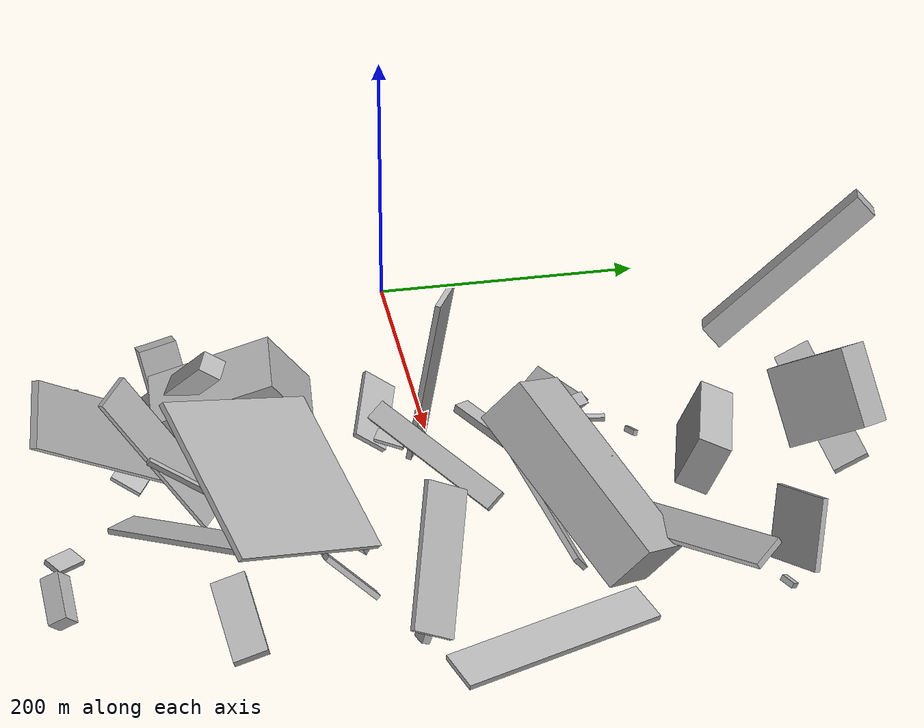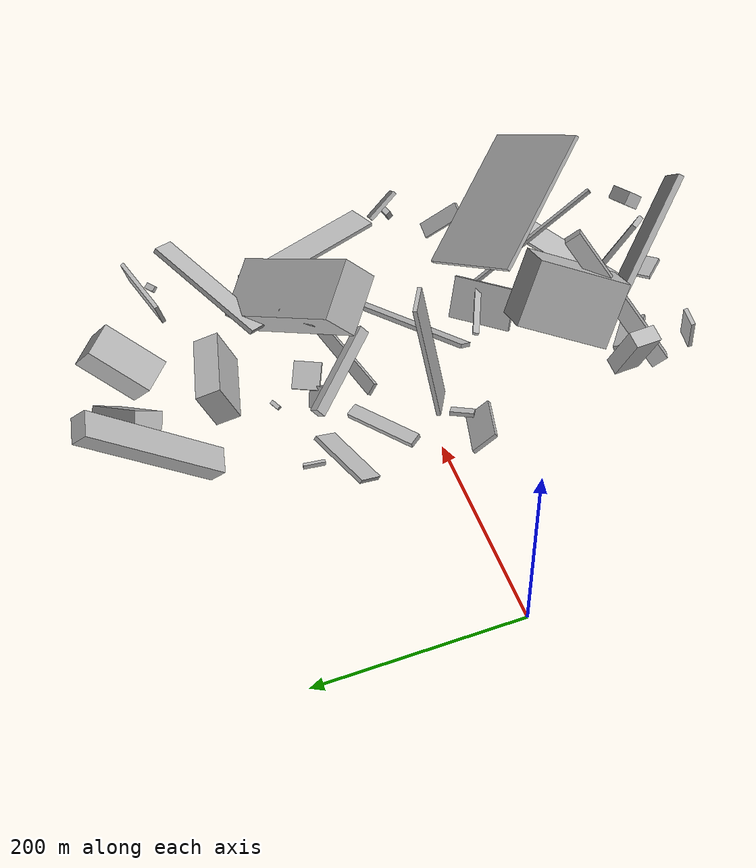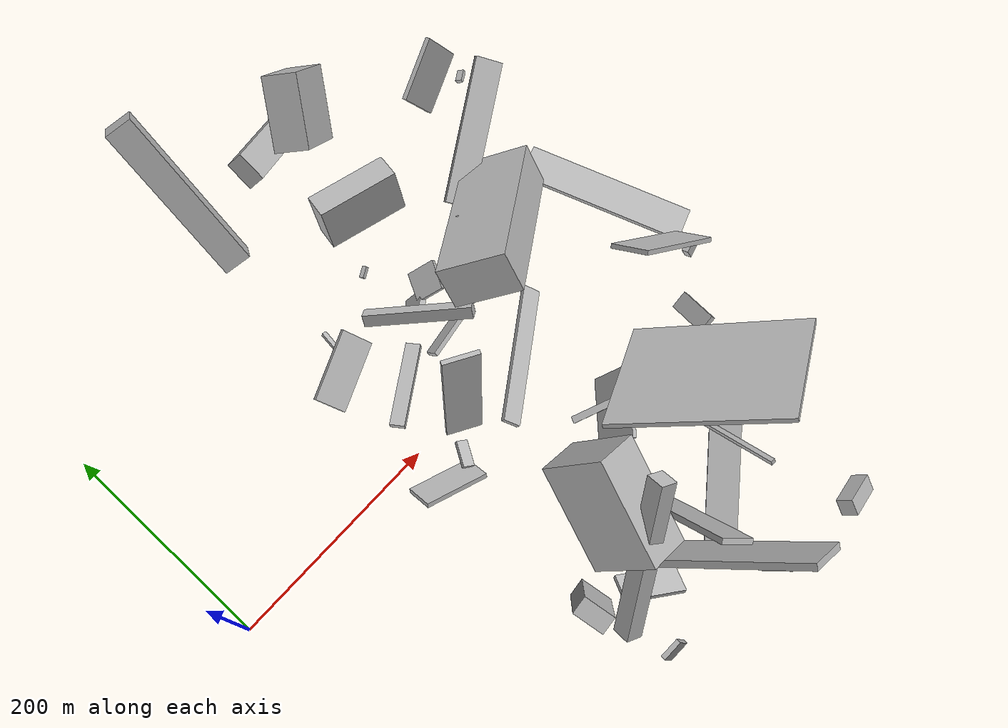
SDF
<sdf version="1.6">
 <world name="default">
  <model name="building_1">
   <static>0</static>
   <pose>297.71241578657066 87.83593629910652 17.47330709386474 2.6968535912542233 0.5865769096136061 -1.1177263193110707</pose>
   <link name="link">
    <gravity>0</gravity>
    <pose>0 0 11.0 0 0 0</pose>
    <collision name="collision"><geometry><box><size>6 19 22</size></box></geometry></collision>
    <visual name="visual">
     <cast_shadows>0</cast_shadows>
     <geometry><box><size>6 19 22</size></box></geometry>
     <material>
      <script>
       <uri>model://HANNAS_wall/materials/scripts</uri>
       <uri>model://HANNAS_wall/materials/textures</uri>
       <name>vrc/HANNAS_wall</name>
      </script>
     </material>
    </visual>
   </link>
  </model>
  <model name="building_2">
   <static>0</static>
   <pose>206.96011081811935 212.61075563548965 63.79814033238791 0.8096348505853139 0.25082228805432816 2.900996197542213</pose>
   <link name="link">
    <gravity>0</gravity>
    <pose>0 0 75.0 0 0 0</pose>
    <collision name="collision"><geometry><box><size>24 19 150</size></box></geometry></collision>
    <visual name="visual">
     <cast_shadows>0</cast_shadows>
     <geometry><box><size>24 19 150</size></box></geometry>
     <material>
      <script>
       <uri>model://HANNAS_wall/materials/scripts</uri>
       <uri>model://HANNAS_wall/materials/textures</uri>
       <name>vrc/HANNAS_wall</name>
      </script>
     </material>
    </visual>
   </link>
  </model>
  <model name="building_3">
   <static>0</static>
   <pose>307.0702612947243 -77.11629436613842 16.124817078696434 1.2682096785554164 -0.12013077441322298 1.1812003932377553</pose>
   <link name="link">
    <gravity>0</gravity>
    <pose>0 0 25.0 0 0 0</pose>
    <collision name="collision"><geometry><box><size>6 5 50</size></box></geometry></collision>
    <visual name="visual">
     <cast_shadows>0</cast_shadows>
     <geometry><box><size>6 5 50</size></box></geometry>
     <material>
      <script>
       <uri>model://HANNAS_wall/materials/scripts</uri>
       <uri>model://HANNAS_wall/materials/textures</uri>
       <name>vrc/HANNAS_wall</name>
      </script>
     </material>
    </visual>
   </link>
  </model>
  <model name="building_4">
   <static>0</static>
   <pose>313.78167105293386 -246.09990918476598 71.08225700155167 0.4948101192086795 -0.6307183531772063 -0.9255171540671405</pose>
   <link name="link">
    <gravity>0</gravity>
    <pose>0 0 23.5 0 0 0</pose>
    <collision name="collision"><geometry><box><size>150 6 47</size></box></geometry></collision>
    <visual name="visual">
     <cast_shadows>0</cast_shadows>
     <geometry><box><size>150 6 47</size></box></geometry>
     <material>
      <script>
       <uri>model://HANNAS_wall/materials/scripts</uri>
       <uri>model://HANNAS_wall/materials/textures</uri>
       <name>vrc/HANNAS_wall</name>
      </script>
     </material>
    </visual>
   </link>
  </model>
  <model name="building_6">
   <static>0</static>
   <pose>247.51975503204395 -6.285872282242987 80.4801147642246 -2.9505563134156616 -1.3897228845897212 0.8711952157885157</pose>
   <link name="link">
    <gravity>0</gravity>
    <pose>0 0 2.0 0 0 0</pose>
    <collision name="collision"><geometry><box><size>139 31 4</size></box></geometry></collision>
    <visual name="visual">
     <cast_shadows>0</cast_shadows>
     <geometry><box><size>139 31 4</size></box></geometry>
     <material>
      <script>
       <uri>model://HANNAS_wall/materials/scripts</uri>
       <uri>model://HANNAS_wall/materials/textures</uri>
       <name>vrc/HANNAS_wall</name>
      </script>
     </material>
    </visual>
   </link>
  </model>
  <model name="building_10">
   <static>0</static>
   <pose>267.6451398783628 -228.05808606958726 21.100522226349664 1.2604779262818613 -0.4113133495196235 -2.0708005804675986</pose>
   <link name="link">
    <gravity>0</gravity>
    <pose>0 0 27.0 0 0 0</pose>
    <collision name="collision"><geometry><box><size>24 4 54</size></box></geometry></collision>
    <visual name="visual">
     <cast_shadows>0</cast_shadows>
     <geometry><box><size>24 4 54</size></box></geometry>
     <material>
      <script>
       <uri>model://HANNAS_wall/materials/scripts</uri>
       <uri>model://HANNAS_wall/materials/textures</uri>
       <name>vrc/HANNAS_wall</name>
      </script>
     </material>
    </visual>
   </link>
  </model>
  <model name="building_11">
   <static>0</static>
   <pose>361.46367450054584 22.07012182666691 40.913725267564274 1.2820316862641012 -0.9685445225770268 -0.734197492434025</pose>
   <link name="link">
    <gravity>0</gravity>
    <pose>0 0 61.5 0 0 0</pose>
    <collision name="collision"><geometry><box><size>4 16 123</size></box></geometry></collision>
    <visual name="visual">
     <cast_shadows>0</cast_shadows>
     <geometry><box><size>4 16 123</size></box></geometry>
     <material>
      <script>
       <uri>model://HANNAS_wall/materials/scripts</uri>
       <uri>model://HANNAS_wall/materials/textures</uri>
       <name>vrc/HANNAS_wall</name>
      </script>
     </material>
    </visual>
   </link>
  </model>
  <model name="building_13">
   <static>0</static>
   <pose>351.07151464055613 172.58237601797344 45.339455173485355 1.536291086535136 -0.3989734044542775 -1.8108674096821664</pose>
   <link name="link">
    <gravity>0</gravity>
    <pose>0 0 36.0 0 0 0</pose>
    <collision name="collision"><geometry><box><size>25 42 72</size></box></geometry></collision>
    <visual name="visual">
     <cast_shadows>0</cast_shadows>
     <geometry><box><size>25 42 72</size></box></geometry>
     <material>
      <script>
       <uri>model://HANNAS_wall/materials/scripts</uri>
       <uri>model://HANNAS_wall/materials/textures</uri>
       <name>vrc/HANNAS_wall</name>
      </script>
     </material>
    </visual>
   </link>
  </model>
  <model name="building_16">
   <static>0</static>
   <pose>317.0956797515676 243.31815341003679 67.44147268780708 0.5051360739746567 -0.9327896931776685 -2.8259517691248037</pose>
   <link name="link">
    <gravity>0</gravity>
    <pose>0 0 32.0 0 0 0</pose>
    <collision name="collision"><geometry><box><size>58 31 64</size></box></geometry></collision>
    <visual name="visual">
     <cast_shadows>0</cast_shadows>
     <geometry><box><size>58 31 64</size></box></geometry>
     <material>
      <script>
       <uri>model://HANNAS_wall/materials/scripts</uri>
       <uri>model://HANNAS_wall/materials/textures</uri>
       <name>vrc/HANNAS_wall</name>
      </script>
     </material>
    </visual>
   </link>
  </model>
  <model name="building_18">
   <static>0</static>
   <pose>251.75212741427526 -133.82682418713418 56.51250707187681 0.48213585596451985 0.4732582080417911 -0.062205337591230876</pose>
   <link name="link">
    <gravity>0</gravity>
    <pose>0 0 33.0 0 0 0</pose>
    <collision name="collision"><geometry><box><size>40 95 66</size></box></geometry></collision>
    <visual name="visual">
     <cast_shadows>0</cast_shadows>
     <geometry><box><size>40 95 66</size></box></geometry>
     <material>
      <script>
       <uri>model://HANNAS_wall/materials/scripts</uri>
       <uri>model://HANNAS_wall/materials/textures</uri>
       <name>vrc/HANNAS_wall</name>
      </script>
     </material>
    </visual>
   </link>
  </model>
  <model name="building_20">
   <static>0</static>
   <pose>204.84514208319138 -184.7313578506796 39.52454673769282 0.16518541407627468 -0.31147829664308463 0.11244150372047418</pose>
   <link name="link">
    <gravity>0</gravity>
    <pose>0 0 26.5 0 0 0</pose>
    <collision name="collision"><geometry><box><size>16 28 53</size></box></geometry></collision>
    <visual name="visual">
     <cast_shadows>0</cast_shadows>
     <geometry><box><size>16 28 53</size></box></geometry>
     <material>
      <script>
       <uri>model://HANNAS_wall/materials/scripts</uri>
       <uri>model://HANNAS_wall/materials/textures</uri>
       <name>vrc/HANNAS_wall</name>
      </script>
     </material>
    </visual>
   </link>
  </model>
  <model name="building_21">
   <static>0</static>
   <pose>298.01805813345976 260.80923537097306 44.08512058038002 0.9776356016978127 -0.6616502008537043 -2.7298170985158863</pose>
   <link name="link">
    <gravity>0</gravity>
    <pose>0 0 13.5 0 0 0</pose>
    <collision name="collision"><geometry><box><size>93 17 27</size></box></geometry></collision>
    <visual name="visual">
     <cast_shadows>0</cast_shadows>
     <geometry><box><size>93 17 27</size></box></geometry>
     <material>
      <script>
       <uri>model://HANNAS_wall/materials/scripts</uri>
       <uri>model://HANNAS_wall/materials/textures</uri>
       <name>vrc/HANNAS_wall</name>
      </script>
     </material>
    </visual>
   </link>
  </model>
  <model name="building_22">
   <static>0</static>
   <pose>397.1714974391713 62.912784899826704 74.18462252494449 2.097577245200594 -0.5450222949340181 -2.5667175552980606</pose>
   <link name="link">
    <gravity>0</gravity>
    <pose>0 0 30.5 0 0 0</pose>
    <collision name="collision"><geometry><box><size>150 39 61</size></box></geometry></collision>
    <visual name="visual">
     <cast_shadows>0</cast_shadows>
     <geometry><box><size>150 39 61</size></box></geometry>
     <material>
      <script>
       <uri>model://HANNAS_wall/materials/scripts</uri>
       <uri>model://HANNAS_wall/materials/textures</uri>
       <name>vrc/HANNAS_wall</name>
      </script>
     </material>
    </visual>
   </link>
  </model>
  <model name="building_28">
   <static>0</static>
   <pose>410.92057568345444 -283.24886837420456 28.313043069506655 -0.6669407198926535 -0.5112680128658409 -3.070676963409602</pose>
   <link name="link">
    <gravity>0</gravity>
    <pose>0 0 7.0 0 0 0</pose>
    <collision name="collision"><geometry><box><size>35 15 14</size></box></geometry></collision>
    <visual name="visual">
     <cast_shadows>0</cast_shadows>
     <geometry><box><size>35 15 14</size></box></geometry>
     <material>
      <script>
       <uri>model://HANNAS_wall/materials/scripts</uri>
       <uri>model://HANNAS_wall/materials/textures</uri>
       <name>vrc/HANNAS_wall</name>
      </script>
     </material>
    </visual>
   </link>
  </model>
  <model name="building_30">
   <static>0</static>
   <pose>281.48337224547487 75.07925805366995 51.39193117331456 0.8837952105883309 -0.2631095018806541 -0.8163827819466523</pose>
   <link name="link">
    <gravity>0</gravity>
    <pose>0 0 5.0 0 0 0</pose>
    <collision name="collision"><geometry><box><size>94 11 10</size></box></geometry></collision>
    <visual name="visual">
     <cast_shadows>0</cast_shadows>
     <geometry><box><size>94 11 10</size></box></geometry>
     <material>
      <script>
       <uri>model://HANNAS_wall/materials/scripts</uri>
       <uri>model://HANNAS_wall/materials/textures</uri>
       <name>vrc/HANNAS_wall</name>
      </script>
     </material>
    </visual>
   </link>
  </model>
  <model name="building_31">
   <static>0</static>
   <pose>443.06495664427644 215.62962405526093 50.56171488506024 2.291932640045188 -1.1166171068039117 2.7242985962220456</pose>
   <link name="link">
    <gravity>0</gravity>
    <pose>0 0 2.0 0 0 0</pose>
    <collision name="collision"><geometry><box><size>51 56 4</size></box></geometry></collision>
    <visual name="visual">
     <cast_shadows>0</cast_shadows>
     <geometry><box><size>51 56 4</size></box></geometry>
     <material>
      <script>
       <uri>model://HANNAS_wall/materials/scripts</uri>
       <uri>model://HANNAS_wall/materials/textures</uri>
       <name>vrc/HANNAS_wall</name>
      </script>
     </material>
    </visual>
   </link>
  </model>
  <model name="building_34">
   <static>0</static>
   <pose>347.46894992241516 -84.92059379199341 69.63384082575583 0.9189776206397643 -0.8192777258078858 1.1968600701810714</pose>
   <link name="link">
    <gravity>0</gravity>
    <pose>0 0 75.0 0 0 0</pose>
    <collision name="collision"><geometry><box><size>4 122 150</size></box></geometry></collision>
    <visual name="visual">
     <cast_shadows>0</cast_shadows>
     <geometry><box><size>4 122 150</size></box></geometry>
     <material>
      <script>
       <uri>model://HANNAS_wall/materials/scripts</uri>
       <uri>model://HANNAS_wall/materials/textures</uri>
       <name>vrc/HANNAS_wall</name>
      </script>
     </material>
    </visual>
   </link>
  </model>
  <model name="building_35">
   <static>0</static>
   <pose>204.8514459845171 93.74980672519081 18.075513329621458 -0.12936541500774848 -0.6239656090000977 2.0385656436505917</pose>
   <link name="link">
    <gravity>0</gravity>
    <pose>0 0 2.0 0 0 0</pose>
    <collision name="collision"><geometry><box><size>30 63 4</size></box></geometry></collision>
    <visual name="visual">
     <cast_shadows>0</cast_shadows>
     <geometry><box><size>30 63 4</size></box></geometry>
     <material>
      <script>
       <uri>model://HANNAS_wall/materials/scripts</uri>
       <uri>model://HANNAS_wall/materials/textures</uri>
       <name>vrc/HANNAS_wall</name>
      </script>
     </material>
    </visual>
   </link>
  </model>
  <model name="building_36">
   <static>0</static>
   <pose>378.4596483250299 122.05644675926067 27.88734179069738 0.9789207001568955 1.0742460602247041 1.5730494803375332</pose>
   <link name="link">
    <gravity>0</gravity>
    <pose>0 0 64.5 0 0 0</pose>
    <collision name="collision"><geometry><box><size>5 25 129</size></box></geometry></collision>
    <visual name="visual">
     <cast_shadows>0</cast_shadows>
     <geometry><box><size>5 25 129</size></box></geometry>
     <material>
      <script>
       <uri>model://HANNAS_wall/materials/scripts</uri>
       <uri>model://HANNAS_wall/materials/textures</uri>
       <name>vrc/HANNAS_wall</name>
      </script>
     </material>
    </visual>
   </link>
  </model>
  <model name="building_38">
   <static>0</static>
   <pose>209.70912548932057 -259.1334391043889 43.89996663707501 0.6369880946280805 -1.2984624363727835 2.4835404906309675</pose>
   <link name="link">
    <gravity>0</gravity>
    <pose>0 0 9.0 0 0 0</pose>
    <collision name="collision"><geometry><box><size>47 4 18</size></box></geometry></collision>
    <visual name="visual">
     <cast_shadows>0</cast_shadows>
     <geometry><box><size>47 4 18</size></box></geometry>
     <material>
      <script>
       <uri>model://HANNAS_wall/materials/scripts</uri>
       <uri>model://HANNAS_wall/materials/textures</uri>
       <name>vrc/HANNAS_wall</name>
      </script>
     </material>
    </visual>
   </link>
  </model>
  <model name="building_40">
   <static>0</static>
   <pose>337.4850164448382 62.63080665086672 18.289659731971188 0.11376829304376398 -0.628134828828318 1.6826366860598554</pose>
   <link name="link">
    <gravity>0</gravity>
    <pose>0 0 6.5 0 0 0</pose>
    <collision name="collision"><geometry><box><size>4 150 13</size></box></geometry></collision>
    <visual name="visual">
     <cast_shadows>0</cast_shadows>
     <geometry><box><size>4 150 13</size></box></geometry>
     <material>
      <script>
       <uri>model://HANNAS_wall/materials/scripts</uri>
       <uri>model://HANNAS_wall/materials/textures</uri>
       <name>vrc/HANNAS_wall</name>
      </script>
     </material>
    </visual>
   </link>
  </model>
  <model name="building_41">
   <static>0</static>
   <pose>455.7790174752265 110.10494715297648 9.958671258566918 1.6991675431652704 -1.4132178837291658 0.21780299085193638</pose>
   <link name="link">
    <gravity>0</gravity>
    <pose>0 0 75.0 0 0 0</pose>
    <collision name="collision"><geometry><box><size>4 32 150</size></box></geometry></collision>
    <visual name="visual">
     <cast_shadows>0</cast_shadows>
     <geometry><box><size>4 32 150</size></box></geometry>
     <material>
      <script>
       <uri>model://HANNAS_wall/materials/scripts</uri>
       <uri>model://HANNAS_wall/materials/textures</uri>
       <name>vrc/HANNAS_wall</name>
      </script>
     </material>
    </visual>
   </link>
  </model>
  <model name="building_42">
   <static>0</static>
   <pose>437.1848148771667 -180.077713038702 15.714639798899604 1.2618338462241274 -0.24822062700309455 -3.044958527183645</pose>
   <link name="link">
    <gravity>0</gravity>
    <pose>0 0 12.5 0 0 0</pose>
    <collision name="collision"><geometry><box><size>71 5 25</size></box></geometry></collision>
    <visual name="visual">
     <cast_shadows>0</cast_shadows>
     <geometry><box><size>71 5 25</size></box></geometry>
     <material>
      <script>
       <uri>model://HANNAS_wall/materials/scripts</uri>
       <uri>model://HANNAS_wall/materials/textures</uri>
       <name>vrc/HANNAS_wall</name>
      </script>
     </material>
    </visual>
   </link>
  </model>
  <model name="building_44">
   <static>0</static>
   <pose>316.75432891875676 107.70820693661192 20.77195737746744 1.5079600944694262 -0.5794777495831444 -0.46285554862212036</pose>
   <link name="link">
    <gravity>0</gravity>
    <pose>0 0 13.5 0 0 0</pose>
    <collision name="collision"><geometry><box><size>27 4 27</size></box></geometry></collision>
    <visual name="visual">
     <cast_shadows>0</cast_shadows>
     <geometry><box><size>27 4 27</size></box></geometry>
     <material>
      <script>
       <uri>model://HANNAS_wall/materials/scripts</uri>
       <uri>model://HANNAS_wall/materials/textures</uri>
       <name>vrc/HANNAS_wall</name>
      </script>
     </material>
    </visual>
   </link>
  </model>
  <model name="building_45">
   <static>0</static>
   <pose>233.23807016238325 47.23718192580433 16.801124412572396 -2.987117303333822 -0.12657207334539103 -2.5590559405482094</pose>
   <link name="link">
    <gravity>0</gravity>
    <pose>0 0 3.0 0 0 0</pose>
    <collision name="collision"><geometry><box><size>75 13 6</size></box></geometry></collision>
    <visual name="visual">
     <cast_shadows>0</cast_shadows>
     <geometry><box><size>75 13 6</size></box></geometry>
     <material>
      <script>
       <uri>model://HANNAS_wall/materials/scripts</uri>
       <uri>model://HANNAS_wall/materials/textures</uri>
       <name>vrc/HANNAS_wall</name>
      </script>
     </material>
    </visual>
   </link>
  </model>
  <model name="building_46">
   <static>0</static>
   <pose>292.48107210706627 -194.04614856961754 73.9978071296627 1.9906625507238773 -0.3940410696121574 0.6388211681908269</pose>
   <link name="link">
    <gravity>0</gravity>
    <pose>0 0 13.5 0 0 0</pose>
    <collision name="collision"><geometry><box><size>5 126 27</size></box></geometry></collision>
    <visual name="visual">
     <cast_shadows>0</cast_shadows>
     <geometry><box><size>5 126 27</size></box></geometry>
     <material>
      <script>
       <uri>model://HANNAS_wall/materials/scripts</uri>
       <uri>model://HANNAS_wall/materials/textures</uri>
       <name>vrc/HANNAS_wall</name>
      </script>
     </material>
    </visual>
   </link>
  </model>
  <model name="building_48">
   <static>0</static>
   <pose>367.82642101030217 -159.6219496306828 60.816050408735165 0.6495001780424523 -0.12974064709208513 3.034731647817542</pose>
   <link name="link">
    <gravity>0</gravity>
    <pose>0 0 2.0 0 0 0</pose>
    <collision name="collision"><geometry><box><size>4 150 4</size></box></geometry></collision>
    <visual name="visual">
     <cast_shadows>0</cast_shadows>
     <geometry><box><size>4 150 4</size></box></geometry>
     <material>
      <script>
       <uri>model://HANNAS_wall/materials/scripts</uri>
       <uri>model://HANNAS_wall/materials/textures</uri>
       <name>vrc/HANNAS_wall</name>
      </script>
     </material>
    </visual>
   </link>
  </model>
  <model name="building_49">
   <static>0</static>
   <pose>354.3653620931119 72.88266100502348 40.22492990543145 0.6576361989779184 -0.1647904857248847 -2.442301127326727</pose>
   <link name="link">
    <gravity>0</gravity>
    <pose>0 0 19.0 0 0 0</pose>
    <collision name="collision"><geometry><box><size>40 7 38</size></box></geometry></collision>
    <visual name="visual">
     <cast_shadows>0</cast_shadows>
     <geometry><box><size>40 7 38</size></box></geometry>
     <material>
      <script>
       <uri>model://HANNAS_wall/materials/scripts</uri>
       <uri>model://HANNAS_wall/materials/textures</uri>
       <name>vrc/HANNAS_wall</name>
      </script>
     </material>
    </visual>
   </link>
  </model>
  <model name="building_54">
   <static>0</static>
   <pose>365.1657943058678 -188.3715495379811 37.32633624432501 0.28735636491207467 -0.09717857845283673 -0.8896469553728923</pose>
   <link name="link">
    <gravity>0</gravity>
    <pose>0 0 2.0 0 0 0</pose>
    <collision name="collision"><geometry><box><size>26 150 4</size></box></geometry></collision>
    <visual name="visual">
     <cast_shadows>0</cast_shadows>
     <geometry><box><size>26 150 4</size></box></geometry>
     <material>
      <script>
       <uri>model://HANNAS_wall/materials/scripts</uri>
       <uri>model://HANNAS_wall/materials/textures</uri>
       <name>vrc/HANNAS_wall</name>
      </script>
     </material>
    </visual>
   </link>
  </model>
  <model name="building_57">
   <static>0</static>
   <pose>470.51695158764164 204.18328409679268 24.089261319831575 0.15130786791518522 0.4836527699571073 2.199484994818848</pose>
   <link name="link">
    <gravity>0</gravity>
    <pose>0 0 2.0 0 0 0</pose>
    <collision name="collision"><geometry><box><size>6 11 4</size></box></geometry></collision>
    <visual name="visual">
     <cast_shadows>0</cast_shadows>
     <geometry><box><size>6 11 4</size></box></geometry>
     <material>
      <script>
       <uri>model://HANNAS_wall/materials/scripts</uri>
       <uri>model://HANNAS_wall/materials/textures</uri>
       <name>vrc/HANNAS_wall</name>
      </script>
     </material>
    </visual>
   </link>
  </model>
  <model name="building_63">
   <static>0</static>
   <pose>443.5140812303823 -75.46744968065018 31.211650046216562 0.5457185943803182 0.7229494524485099 -1.1500163452277334</pose>
   <link name="link">
    <gravity>0</gravity>
    <pose>0 0 22.5 0 0 0</pose>
    <collision name="collision"><geometry><box><size>4 16 45</size></box></geometry></collision>
    <visual name="visual">
     <cast_shadows>0</cast_shadows>
     <geometry><box><size>4 16 45</size></box></geometry>
     <material>
      <script>
       <uri>model://HANNAS_wall/materials/scripts</uri>
       <uri>model://HANNAS_wall/materials/textures</uri>
       <name>vrc/HANNAS_wall</name>
      </script>
     </material>
    </visual>
   </link>
  </model>
  <model name="building_64">
   <static>0</static>
   <pose>217.35094715199642 120.71855349432546 5.350399276598997 -0.008774667763503831 -0.2548692999999739 3.0268407341735024</pose>
   <link name="link">
    <gravity>0</gravity>
    <pose>0 0 2.0 0 0 0</pose>
    <collision name="collision"><geometry><box><size>4 21 4</size></box></geometry></collision>
    <visual name="visual">
     <cast_shadows>0</cast_shadows>
     <geometry><box><size>4 21 4</size></box></geometry>
     <material>
      <script>
       <uri>model://HANNAS_wall/materials/scripts</uri>
       <uri>model://HANNAS_wall/materials/textures</uri>
       <name>vrc/HANNAS_wall</name>
      </script>
     </material>
    </visual>
   </link>
  </model>
  <model name="building_66">
   <static>0</static>
   <pose>336.6308061926148 -95.12548227522448 23.060954885069272 2.1840063151716214 0.12047311526053776 0.7780031265858908</pose>
   <link name="link">
    <gravity>0</gravity>
    <pose>0 0 2.0 0 0 0</pose>
    <collision name="collision"><geometry><box><size>64 42 4</size></box></geometry></collision>
    <visual name="visual">
     <cast_shadows>0</cast_shadows>
     <geometry><box><size>64 42 4</size></box></geometry>
     <material>
      <script>
       <uri>model://HANNAS_wall/materials/scripts</uri>
       <uri>model://HANNAS_wall/materials/textures</uri>
       <name>vrc/HANNAS_wall</name>
      </script>
     </material>
    </visual>
   </link>
  </model>
  <model name="building_67">
   <static>0</static>
   <pose>196.35673932677463 -48.237695346544356 25.89387228968713 2.259912320016476 -0.3298392052427857 2.8544649797227146</pose>
   <link name="link">
    <gravity>0</gravity>
    <pose>0 0 13.5 0 0 0</pose>
    <collision name="collision"><geometry><box><size>59 4 27</size></box></geometry></collision>
    <visual name="visual">
     <cast_shadows>0</cast_shadows>
     <geometry><box><size>59 4 27</size></box></geometry>
     <material>
      <script>
       <uri>model://HANNAS_wall/materials/scripts</uri>
       <uri>model://HANNAS_wall/materials/textures</uri>
       <name>vrc/HANNAS_wall</name>
      </script>
     </material>
    </visual>
   </link>
  </model>
  <model name="building_69">
   <static>0</static>
   <pose>454.63981509178325 -21.120167287455594 57.569974228009364 -0.7657885159070223 -0.758371760341857 2.8391740791572015</pose>
   <link name="link">
    <gravity>0</gravity>
    <pose>0 0 17.5 0 0 0</pose>
    <collision name="collision"><geometry><box><size>103 4 35</size></box></geometry></collision>
    <visual name="visual">
     <cast_shadows>0</cast_shadows>
     <geometry><box><size>103 4 35</size></box></geometry>
     <material>
      <script>
       <uri>model://HANNAS_wall/materials/scripts</uri>
       <uri>model://HANNAS_wall/materials/textures</uri>
       <name>vrc/HANNAS_wall</name>
      </script>
     </material>
    </visual>
   </link>
  </model>
  <model name="building_72">
   <static>0</static>
   <pose>249.0104589548778 -202.10316618979476 84.380217438725 2.233013820250575 -0.4750730083218531 2.6957750495336965</pose>
   <link name="link">
    <gravity>0</gravity>
    <pose>0 0 8.5 0 0 0</pose>
    <collision name="collision"><geometry><box><size>15 150 17</size></box></geometry></collision>
    <visual name="visual">
     <cast_shadows>0</cast_shadows>
     <geometry><box><size>15 150 17</size></box></geometry>
     <material>
      <script>
       <uri>model://HANNAS_wall/materials/scripts</uri>
       <uri>model://HANNAS_wall/materials/textures</uri>
       <name>vrc/HANNAS_wall</name>
      </script>
     </material>
    </visual>
   </link>
  </model>
  <model name="building_75">
   <static>0</static>
   <pose>276.7355160760526 139.00181070215928 31.6777391387387 0.29174213018245526 1.1156722452183114 -0.8248045847958623</pose>
   <link name="link">
    <gravity>0</gravity>
    <pose>0 0 2.0 0 0 0</pose>
    <collision name="collision"><geometry><box><size>4 10 4</size></box></geometry></collision>
    <visual name="visual">
     <cast_shadows>0</cast_shadows>
     <geometry><box><size>4 10 4</size></box></geometry>
     <material>
      <script>
       <uri>model://HANNAS_wall/materials/scripts</uri>
       <uri>model://HANNAS_wall/materials/textures</uri>
       <name>vrc/HANNAS_wall</name>
      </script>
     </material>
    </visual>
   </link>
  </model>
  <model name="building_76">
   <static>0</static>
   <pose>335.27615830377863 -277.42364623107113 10.810395751499323 2.8949761401061367 -0.15402158441149405 -0.8538856842042618</pose>
   <link name="link">
    <gravity>0</gravity>
    <pose>0 0 2.0 0 0 0</pose>
    <collision name="collision"><geometry><box><size>25 15 4</size></box></geometry></collision>
    <visual name="visual">
     <cast_shadows>0</cast_shadows>
     <geometry><box><size>25 15 4</size></box></geometry>
     <material>
      <script>
       <uri>model://HANNAS_wall/materials/scripts</uri>
       <uri>model://HANNAS_wall/materials/textures</uri>
       <name>vrc/HANNAS_wall</name>
      </script>
     </material>
    </visual>
   </link>
  </model>
  <model name="building_80">
   <static>0</static>
   <pose>487.2448780688639 -52.10607703674072 22.851434578138193 0.11804685011148565 -0.40507206012598496 -1.3406019535283527</pose>
   <link name="link">
    <gravity>0</gravity>
    <pose>0 0 5.5 0 0 0</pose>
    <collision name="collision"><geometry><box><size>6 12 11</size></box></geometry></collision>
    <visual name="visual">
     <cast_shadows>0</cast_shadows>
     <geometry><box><size>6 12 11</size></box></geometry>
     <material>
      <script>
       <uri>model://HANNAS_wall/materials/scripts</uri>
       <uri>model://HANNAS_wall/materials/textures</uri>
       <name>vrc/HANNAS_wall</name>
      </script>
     </material>
    </visual>
   </link>
  </model>
  <model name="building_81">
   <static>0</static>
   <pose>223.91757752425184 -29.484528875791515 8.768797487781104 0.09640395869145003 -0.39081794624768135 2.55692894533404</pose>
   <link name="link">
    <gravity>0</gravity>
    <pose>0 0 2.0 0 0 0</pose>
    <collision name="collision"><geometry><box><size>10 23 4</size></box></geometry></collision>
    <visual name="visual">
     <cast_shadows>0</cast_shadows>
     <geometry><box><size>10 23 4</size></box></geometry>
     <material>
      <script>
       <uri>model://HANNAS_wall/materials/scripts</uri>
       <uri>model://HANNAS_wall/materials/textures</uri>
       <name>vrc/HANNAS_wall</name>
      </script>
     </material>
    </visual>
   </link>
  </model>
 </world>
</sdf>
